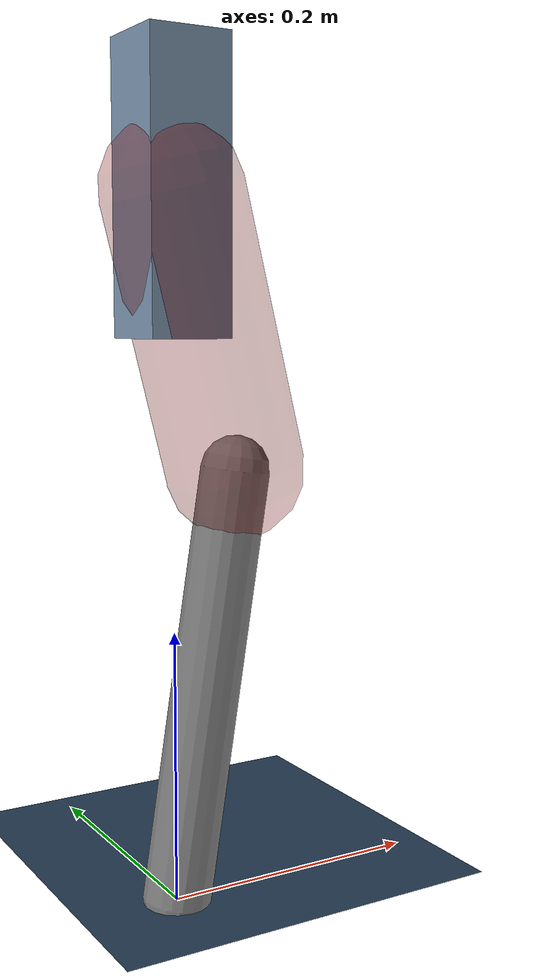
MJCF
<mujoco model="Hopper2D">
	<compiler inertiafromgeom="true" angle="radian" />
	<option timestep="0.001" integrator="implicit" cone="elliptic" solver="Newton" tolerance="1e-10" />

	<default>
		<geom contype="1" conaffinity="1" condim="3" friction="2 0.005 0.0001" solref="0.005 1" />
		<joint limited="true" damping="0.1" />
	</default>

	<asset>
		<texture name="skybox" type="skybox" builtin="gradient" rgb1=".4 .6 .8" rgb2="0 0 0" width="800" height="800" />
		<texture name="grid" type="2d" builtin="checker" rgb1=".1 .2 .3" rgb2=".2 .3 .4" width="300" height="300" mark="edge" markrgb=".2 .3 .4" />
		<material name="ground" texture="grid" texrepeat="1 1" texuniform="true" reflectance="0.1" />
		<material name="leg" rgba="0.5 0.6 0.7 1" />
	</asset>

	<worldbody>

		<geom name="floor" type="plane" size="5 5 0.25" material="ground" />

		<light directional="false" diffuse="0.8 0.8 0.8" specular="0.3 0.3 0.3" pos="0 0 2" dir="0 0 -1" />
		<light mode="targetbodycom" target="base" directional="false" diffuse="0.8 0.8 0.8" specular="0.3 0.3 0.3" pos="0 0 2" dir="0 0 -1" />

		<camera name="fixed" pos="0 -2 1" xyaxes="1 0 0 0 0 1" />
		<camera name="tracking" mode="trackcom" pos="0 -3 1" />

		<body name="root" pos="0 0 0.5071932287574337">
			<joint name="slide_x" type="slide" axis="1 0 0" range="-100 100" />
			<joint name="slide_z" type="slide" axis="0 0 1" range="0 10" />

			<body name="base" pos="0 0 0">
				<geom name="torso" type="box" size="0.03 0.03 0.1" mass="1.41" material="leg" />

				<body name="link1" pos="0 0 0" euler="0 1.3215058406028057 0">
					<joint type="hinge" axis="0 -1 0" pos="0 0 0" name="hinge1" limited="true" range="-3.14 3.14" stiffness="0" damping="0.1" />
					<geom name="thigh" type="capsule" fromto="0 0 0 0.19946382749428532 0 0" size="0.05" rgba="0.5 0 0 0.3" mass="0.7283131859862847" />

					<body name="link2" pos="0.19946382749428532 0 0" euler="0 0.40479990000820715 0">
						<joint type="hinge" axis="0 -1 0" pos="0 0 0" name="hinge2" limited="true" range="-3.14 3.14" stiffness="0" damping="0.1" />
						<geom name="shank" type="capsule" fromto="0 0 0 0.31772940126314836 0 0" size="0.025" mass="0.49778352101051865" />

					</body>
				</body>
			</body>
		</body>
	</worldbody>

	<actuator>
		<motor name="torque1" joint="hinge1" ctrlrange="-12.642189667373254 12.642189667373254" ctrllimited="true" gear="1" />
		<motor name="torque2" joint="hinge2" ctrlrange="-24.53904090700965 24.53904090700965" ctrllimited="true" gear="1" />
	</actuator>
</mujoco>
